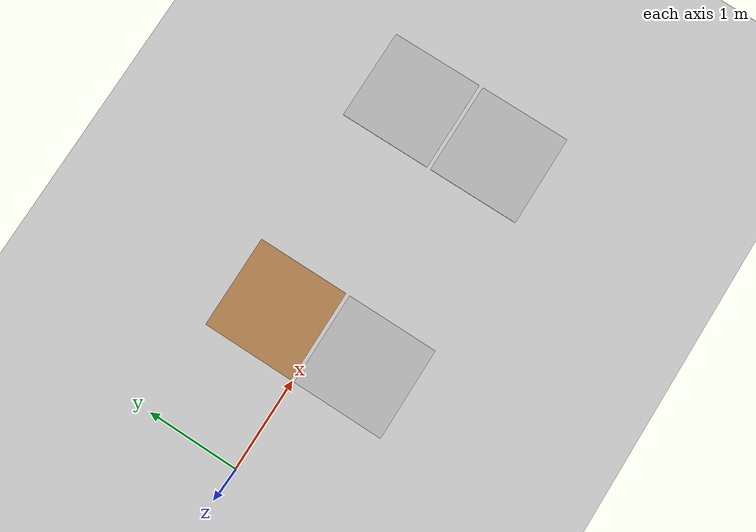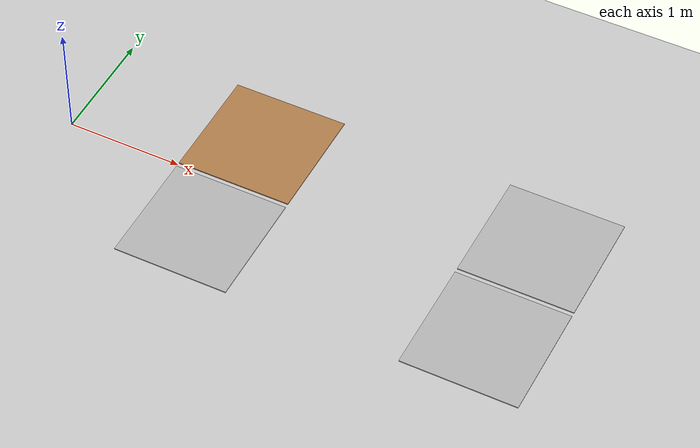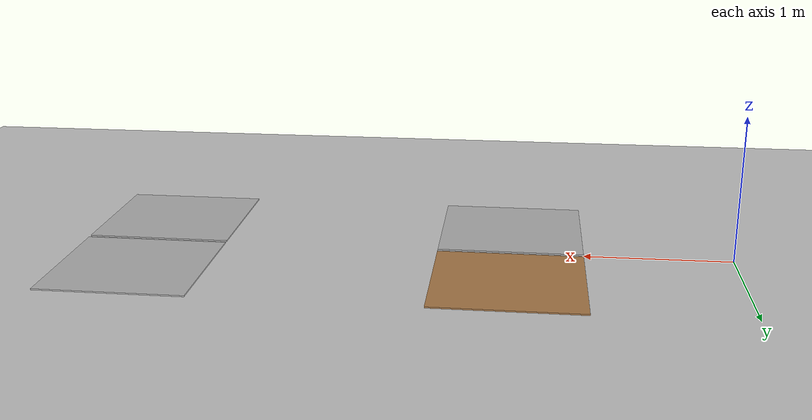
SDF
<sdf version="1.5">
 <world name="default">
  <include><uri>model://sun</uri></include>
  <include><uri>model://my_ground_plane</uri></include>
  <include><uri>model://my_wood</uri><pose>1.5 0.52 0 0 0 0</pose></include>
  <include><uri>model://my_grass</uri><pose>1.5 -0.52 0 0 0 0</pose></include>
  <include><uri>model://my_grass</uri><pose>4.0 0.52 0 0 0 0</pose></include>
  <include><uri>model://my_grass</uri><pose>4.0 -0.52 0 0 0 0</pose></include>
 </world>
</sdf>

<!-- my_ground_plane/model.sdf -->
<sdf version="1.4">
<model name="my_ground_plane">
  <static>true</static>
    <link name="link">
      <collision name="collision">
        <geometry>
          <plane>
            <normal>0 0 1</normal>
            <size>15 15</size>
          </plane>
        </geometry>
        <surface>
          <friction>
            <ode>
              <mu>100</mu>
              <mu2>50</mu2>
            </ode>
          </friction>
        </surface>
      </collision>
      <visual name="visual">
        <cast_shadows>false</cast_shadows>
        <geometry>
          <plane>
            <normal>0 0 1</normal>
            <size>15 15</size>
          </plane>
        </geometry>
        <material>
          <script>
            <uri>model://my_ground_plane/materials/scripts/my_ground_plane.material</uri>
            <name>MyGroundPlane/Image</name>
          </script>
        </material>
      </visual>
    </link>
  </model>
</sdf>

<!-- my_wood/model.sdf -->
<sdf version="1.4">
  <model name="my_wood">
    <link name="base">

      <collision name="collision">
        <geometry>
          <box>
            <size>1 1 0.002</size> <!-- make height smaller compared to grass and granite (i.e. 0.01046m) cos bumpy wood will be on it -->
          </box>
        </geometry>
        <surface>
          <contact>
            <!-- Red Pine coefficients for longitudinal axis of the wood
                 according to:
                 http://www.fpl.fs.fed.us/documnts/fplgtr/fplgtr113/ch04.pdf -->
            <poissons_ratio>0.347</poissons_ratio>
            <elastic_modulus>8.8e+09</elastic_modulus>
            <ode>
              <kp>100000</kp>
              <kd>100</kd>
              <max_vel>100.0</max_vel>
              <min_depth>0.001</min_depth>
            </ode>
          </contact>
          <friction>
            <torsional>
              <coefficient>1.0</coefficient>
              <use_patch_radius>0</use_patch_radius>
              <surface_radius>0.01</surface_radius>
            </torsional>
          </friction>
        </surface>
      </collision>

      <visual name="visual">
        <geometry>
          <box>
            <size>1 1 0.01046</size>
          </box>
        </geometry>
        <material>
          <script>
            <uri>file://media/materials/scripts/gazebo.material</uri>
            <name>Gazebo/Wood</name>
          </script>
        </material>
      </visual>

    </link>

  </model>
</sdf>

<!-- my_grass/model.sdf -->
<sdf version="1.4">
  <model name="my_grass">
    <link name="base">

      <collision name="collision">
        <geometry>
          <box>
            <size>1 1 0.01046</size>
          </box>
        </geometry>
        <surface>
          <contact>
            <!-- Red Pine coefficients for longitudinal axis of the wood
                 according to:
                 http://www.fpl.fs.fed.us/documnts/fplgtr/fplgtr113/ch04.pdf -->
            <poissons_ratio>0.347</poissons_ratio>
            <elastic_modulus>8.8e+09</elastic_modulus>
            <ode>
              <kp>100000</kp>
              <kd>100</kd>
              <max_vel>100.0</max_vel>
              <min_depth>0.001</min_depth>
            </ode>
          </contact>
          <friction>
            <torsional>
              <coefficient>1.0</coefficient>
              <use_patch_radius>0</use_patch_radius>
              <surface_radius>0.01</surface_radius>
            </torsional>
          </friction>
        </surface>
      </collision>

      <visual name="visual">
        <geometry>
          <box>
            <size>1 1 0.01046</size>
          </box>
        </geometry>
        <material>
          <script>
            <uri>model://my_grass/materials/scripts/grass.material</uri>
            <name>grass/Diffuse</name>
          </script>
        </material>
      </visual>

    </link>

  </model>
</sdf>
